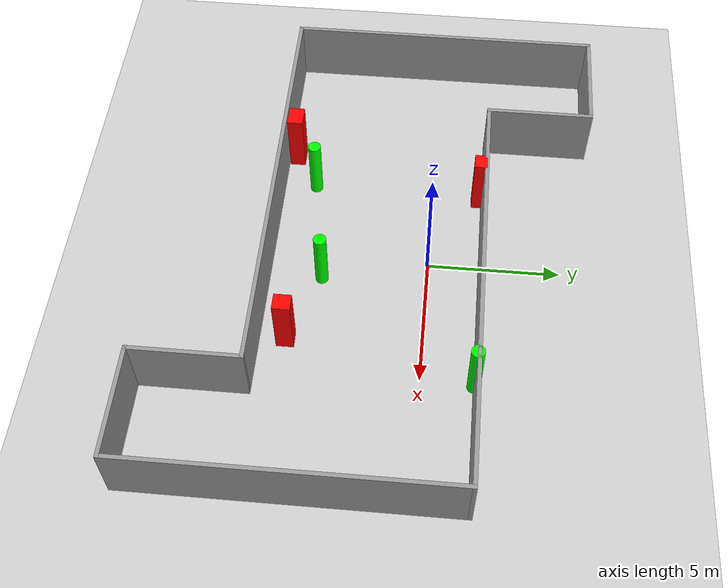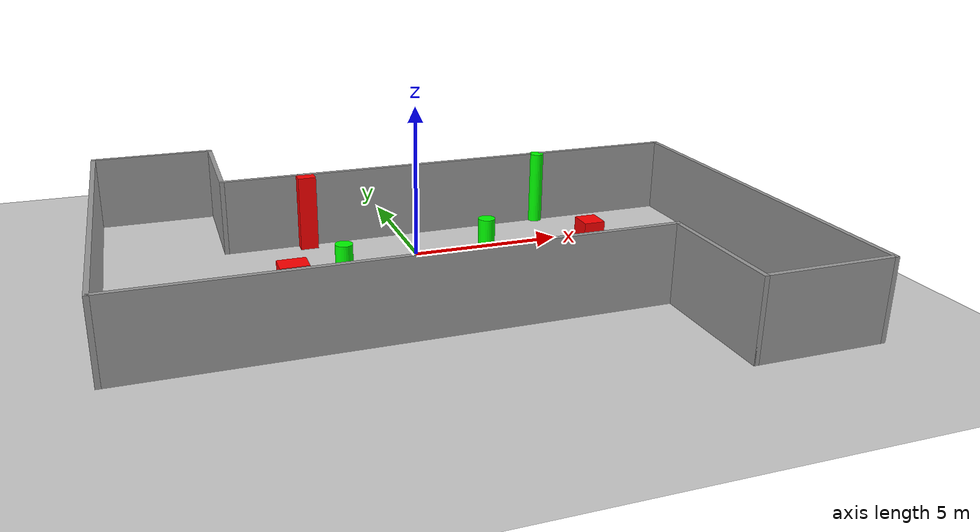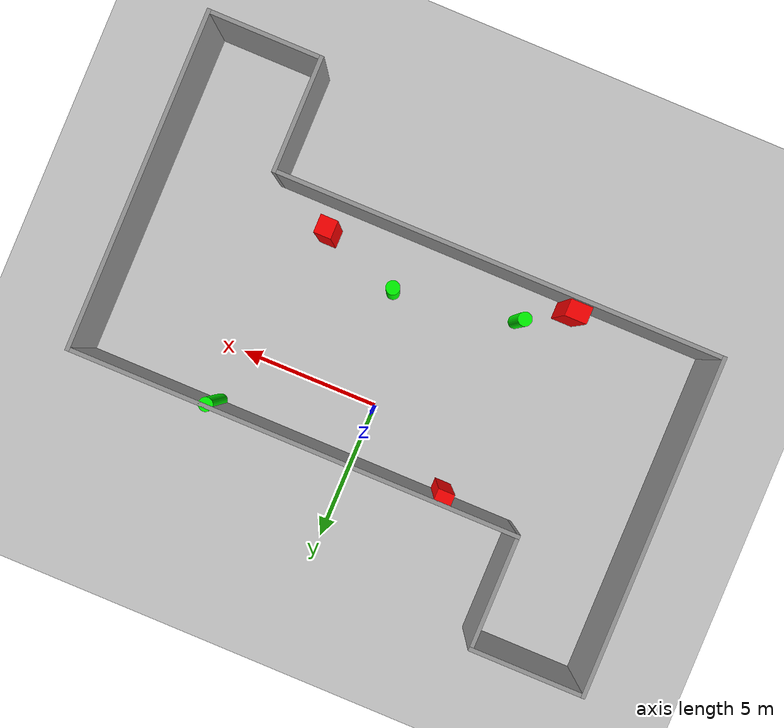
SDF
<sdf version="1.7">
 <world name="default">
  <light name="sun" type="directional">
   <pose>0 0 10 0 -0 0</pose>
   <diffuse>0.8 0.8 0.8 1</diffuse>
   <specular>0.2 0.2 0.2 1</specular>
   <attenuation>
    <range>1000</range>
    <constant>0.9</constant>
    <linear>0.01</linear>
    <quadratic>0.001</quadratic>
   </attenuation>
   <direction>-0.5 0.1 -0.9</direction>
   <spot><inner_angle>0</inner_angle><outer_angle>0</outer_angle><falloff>0</falloff></spot>
  </light>
  <model name="ground_plane">
   <static>1</static>
   <link name="link">
    <collision name="collision">
     <geometry><plane><normal>0 0 1</normal><size>100 100</size></plane></geometry>
     <surface>
      <contact><collide_bitmask>65535</collide_bitmask></contact>
      <friction><ode><mu>100</mu><mu2>50</mu2></ode></friction>
     </surface>
    </collision>
    <visual name="visual">
     <cast_shadows>0</cast_shadows>
     <geometry><plane><normal>0 0 1</normal><size>100 100</size></plane></geometry>
     <material>
      <script><uri>file://media/materials/scripts/gazebo.material</uri><name>Gazebo/Grey</name></script>
     </material>
    </visual>
   </link>
  </model>
  <gravity>0 0 -9.8</gravity>
  <magnetic_field>6e-06 2.3e-05 -4.2e-05</magnetic_field>
  <atmosphere type="adiabatic"/>
  <physics type="ode">
   <max_step_size>0.001</max_step_size>
   <real_time_factor>1</real_time_factor>
   <real_time_update_rate>1000</real_time_update_rate>
  </physics>
  <scene><ambient>0.4 0.4 0.4 1</ambient><background>0.7 0.7 0.7 1</background><shadows>1</shadows></scene>
  <spherical_coordinates>
   <surface_model>EARTH_WGS84</surface_model>
   <latitude_deg>0</latitude_deg>
   <longitude_deg>0</longitude_deg>
   <elevation>0</elevation>
   <heading_deg>0</heading_deg>
  </spherical_coordinates>
  <model name="my_base_walls">
   <link name="Wall_13">
    <collision name="Wall_13_Collision">
     <geometry><box><size>12.15 0.15 2.5</size></box></geometry>
     <pose>0 0 1.25 0 -0 0</pose>
    </collision>
    <visual name="Wall_13_Visual">
     <pose>0 0 1.25 0 -0 0</pose>
     <geometry><box><size>12.15 0.15 2.5</size></box></geometry>
     <material>
      <script><uri>file://media/materials/scripts/gazebo.material</uri><name>Gazebo/Grey</name></script>
      <ambient>1 1 1 1</ambient>
     </material>
     <meta><layer>0</layer></meta>
    </visual>
    <pose>10 -2 0 0 -0 1.5708</pose>
   </link>
   <link name="Wall_15">
    <collision name="Wall_15_Collision">
     <geometry><box><size>16.15 0.15 2.5</size></box></geometry>
     <pose>0 0 1.25 0 -0 0</pose>
    </collision>
    <visual name="Wall_15_Visual">
     <pose>0 0 1.25 0 -0 0</pose>
     <geometry><box><size>16.15 0.15 2.5</size></box></geometry>
     <material>
      <script><uri>file://media/materials/scripts/gazebo.material</uri><name>Gazebo/Grey</name></script>
      <ambient>1 1 1 1</ambient>
     </material>
     <meta><layer>0</layer></meta>
    </visual>
    <pose>2 4 0 0 -0 3.14159</pose>
   </link>
   <link name="Wall_17">
    <collision name="Wall_17_Collision">
     <geometry><box><size>4.15 0.15 2.5</size></box></geometry>
     <pose>0 0 1.25 0 -0 0</pose>
    </collision>
    <visual name="Wall_17_Visual">
     <pose>0 0 1.25 0 -0 0</pose>
     <geometry><box><size>4.15 0.15 2.5</size></box></geometry>
     <material>
      <script><uri>file://media/materials/scripts/gazebo.material</uri><name>Gazebo/Grey</name></script>
      <ambient>1 1 1 1</ambient>
     </material>
     <meta><layer>0</layer></meta>
    </visual>
    <pose>6 -6 0 0 -0 -1.5708</pose>
   </link>
   <link name="Wall_19">
    <collision name="Wall_19_Collision">
     <geometry><box><size>12.15 0.15 2.5</size></box></geometry>
     <pose>0 0 1.25 0 -0 0</pose>
    </collision>
    <visual name="Wall_19_Visual">
     <pose>0 0 1.25 0 -0 0</pose>
     <geometry><box><size>12.15 0.15 2.5</size></box></geometry>
     <material>
      <script><uri>file://media/materials/scripts/gazebo.material</uri><name>Gazebo/Grey</name></script>
      <ambient>1 1 1 1</ambient>
     </material>
     <meta><layer>0</layer></meta>
    </visual>
    <pose>-10 2 0 0 -0 1.5708</pose>
   </link>
   <link name="Wall_21">
    <collision name="Wall_21_Collision">
     <geometry><box><size>4.15 0.15 2.5</size></box></geometry>
     <pose>0 0 1.25 0 -0 0</pose>
    </collision>
    <visual name="Wall_21_Visual">
     <pose>0 0 1.25 0 -0 0</pose>
     <geometry><box><size>4.15 0.15 2.5</size></box></geometry>
     <material>
      <script><uri>file://media/materials/scripts/gazebo.material</uri><name>Gazebo/Grey</name></script>
      <ambient>1 1 1 1</ambient>
     </material>
     <meta><layer>0</layer></meta>
    </visual>
    <pose>-8 8 0 0 -0 0</pose>
   </link>
   <link name="Wall_23">
    <collision name="Wall_23_Collision">
     <geometry><box><size>4.15 0.15 2.5</size></box></geometry>
     <pose>0 0 1.25 0 -0 0</pose>
    </collision>
    <visual name="Wall_23_Visual">
     <pose>0 0 1.25 0 -0 0</pose>
     <geometry><box><size>4.15 0.15 2.5</size></box></geometry>
     <material>
      <script><uri>file://media/materials/scripts/gazebo.material</uri><name>Gazebo/Grey</name></script>
      <ambient>1 1 1 1</ambient>
     </material>
     <meta><layer>0</layer></meta>
    </visual>
    <pose>-6 6 0 0 -0 -1.5708</pose>
   </link>
   <link name="Wall_25">
    <collision name="Wall_25_Collision">
     <geometry><box><size>4.15 0.15 2.5</size></box></geometry>
     <pose>0 0 1.25 0 -0 0</pose>
    </collision>
    <visual name="Wall_25_Visual">
     <pose>0 0 1.25 0 -0 0</pose>
     <geometry><box><size>4.15 0.15 2.5</size></box></geometry>
     <material>
      <script><uri>file://media/materials/scripts/gazebo.material</uri><name>Gazebo/Grey</name></script>
      <ambient>1 1 1 1</ambient>
     </material>
     <meta><layer>0</layer></meta>
    </visual>
    <pose>8 -8 0 0 -0 0</pose>
   </link>
   <link name="Wall_9">
    <collision name="Wall_9_Collision">
     <geometry><box><size>16.15 0.15 2.5</size></box></geometry>
     <pose>0 0 1.25 0 -0 0</pose>
    </collision>
    <visual name="Wall_9_Visual">
     <pose>0 0 1.25 0 -0 0</pose>
     <geometry><box><size>16.15 0.15 2.5</size></box></geometry>
     <material>
      <script><uri>file://media/materials/scripts/gazebo.material</uri><name>Gazebo/Grey</name></script>
      <ambient>1 1 1 1</ambient>
     </material>
     <meta><layer>0</layer></meta>
    </visual>
    <pose>-2 -4 0 0 -0 3.14159</pose>
   </link>
   <static>1</static>
   <pose>-0 -2 0 0 -0 0</pose>
  </model>
  <model name="cylinder1">
   <static>1</static>
   <link name="link">
    <inertial>
     <mass>1</mass>
     <inertia><ixx>0.5</ixx><ixy>0</ixy><ixz>0</ixz><iyy>0.5</iyy><iyz>0</iyz><izz>1</izz></inertia>
    </inertial>
    <collision name="collision">
     <geometry><cylinder><radius>0.2459076717808161</radius><length>2.5</length></cylinder></geometry>
    </collision>
    <visual name="visual">
     <geometry><cylinder><radius>0.2459076717808161</radius><length>2.5</length></cylinder></geometry>
     <material>
      <ambient>0 1 0 1</ambient>
      <diffuse>0 1 0 1</diffuse>
      <specular>0.1 0.1 0.1 1</specular>
      <emissive>0 0 0 0</emissive>
     </material>
    </visual>
   </link>
   <pose>5.1208289454079345 1.9410543636292097 1.25 0 0 0</pose>
  </model>
  <model name="cylinder2">
   <static>1</static>
   <link name="link">
    <inertial>
     <mass>1</mass>
     <inertia><ixx>0.5</ixx><ixy>0</ixy><ixz>0</ixz><iyy>0.5</iyy><iyz>0</iyz><izz>1</izz></inertia>
    </inertial>
    <collision name="collision">
     <geometry><cylinder><radius>0.24306374071537204</radius><length>2.5</length></cylinder></geometry>
    </collision>
    <visual name="visual">
     <geometry><cylinder><radius>0.24306374071537204</radius><length>2.5</length></cylinder></geometry>
     <material>
      <ambient>0 1 0 1</ambient>
      <diffuse>0 1 0 1</diffuse>
      <specular>0.1 0.1 0.1 1</specular>
      <emissive>0 0 0 0</emissive>
     </material>
    </visual>
   </link>
   <pose>-3.466760279596854 -4.6722368764405084 1.25 0 0 0</pose>
  </model>
  <model name="cylinder3">
   <static>1</static>
   <link name="link">
    <inertial>
     <mass>1</mass>
     <inertia><ixx>0.5</ixx><ixy>0</ixy><ixz>0</ixz><iyy>0.5</iyy><iyz>0</iyz><izz>1</izz></inertia>
    </inertial>
    <collision name="collision">
     <geometry><cylinder><radius>0.24325097575451737</radius><length>2.5</length></cylinder></geometry>
    </collision>
    <visual name="visual">
     <geometry><cylinder><radius>0.24325097575451737</radius><length>2.5</length></cylinder></geometry>
     <material>
      <ambient>0 1 0 1</ambient>
      <diffuse>0 1 0 1</diffuse>
      <specular>0.1 0.1 0.1 1</specular>
      <emissive>0 0 0 0</emissive>
     </material>
    </visual>
   </link>
   <pose>0.9289042823893485 -3.9538491304749463 1.25 0 0 0</pose>
  </model>
  <model name="box1">
   <static>1</static>
   <link name="link">
    <inertial>
     <mass>1</mass>
     <inertia><ixx>0.083</ixx><ixy>0</ixy><ixz>0</ixz><iyy>0.083</iyy><iyz>0</iyz><izz>0.083</izz></inertia>
    </inertial>
    <collision name="collision">
     <geometry><box><size>0.6125919961728346 0.6485901970391117 2.5</size></box></geometry>
    </collision>
    <visual name="visual">
     <geometry><box><size>0.6125919961728346 0.6485901970391117 2.5</size></box></geometry>
     <material>
      <ambient>1 0 0 1</ambient>
      <diffuse>1 0 0 1</diffuse>
      <specular>0.1 0.1 0.1 1</specular>
      <emissive>0 0 0 0</emissive>
     </material>
    </visual>
    <sensor name="my_contact" type="contact">
     <contact><collision>box_collision</collision><topic>__default_topic__</topic></contact>
    </sensor>
   </link>
   <pose>3.7304264507063856 -4.95584336089163 1.25 0 0 0</pose>
  </model>
  <model name="box2">
   <static>1</static>
   <link name="link">
    <inertial>
     <mass>1</mass>
     <inertia><ixx>0.083</ixx><ixy>0</ixy><ixz>0</ixz><iyy>0.083</iyy><iyz>0</iyz><izz>0.083</izz></inertia>
    </inertial>
    <collision name="collision">
     <geometry><box><size>0.5932489297957108 0.46833389233983447 2.5</size></box></geometry>
    </collision>
    <visual name="visual">
     <geometry><box><size>0.5932489297957108 0.46833389233983447 2.5</size></box></geometry>
     <material>
      <ambient>1 0 0 1</ambient>
      <diffuse>1 0 0 1</diffuse>
      <specular>0.1 0.1 0.1 1</specular>
      <emissive>0 0 0 0</emissive>
     </material>
    </visual>
    <sensor name="my_contact" type="contact">
     <contact><collision>box_collision</collision><topic>__default_topic__</topic></contact>
    </sensor>
   </link>
   <pose>-3.283765731853848 1.7712765958616572 1.25 0 0 0</pose>
  </model>
  <model name="box3">
   <static>1</static>
   <link name="link">
    <inertial>
     <mass>1</mass>
     <inertia><ixx>0.083</ixx><ixy>0</ixy><ixz>0</ixz><iyy>0.083</iyy><iyz>0</iyz><izz>0.083</izz></inertia>
    </inertial>
    <collision name="collision">
     <geometry><box><size>0.7828206799776318 0.6000387457501715 2.5</size></box></geometry>
    </collision>
    <visual name="visual">
     <geometry><box><size>0.7828206799776318 0.6000387457501715 2.5</size></box></geometry>
     <material>
      <ambient>1 0 0 1</ambient>
      <diffuse>1 0 0 1</diffuse>
      <specular>0.1 0.1 0.1 1</specular>
      <emissive>0 0 0 0</emissive>
     </material>
    </visual>
    <sensor name="my_contact" type="contact">
     <contact><collision>box_collision</collision><topic>__default_topic__</topic></contact>
    </sensor>
   </link>
   <pose>-5.002245025575792 -5.586578671213205 1.25 0 0 0</pose>
  </model>
 </world>
</sdf>
